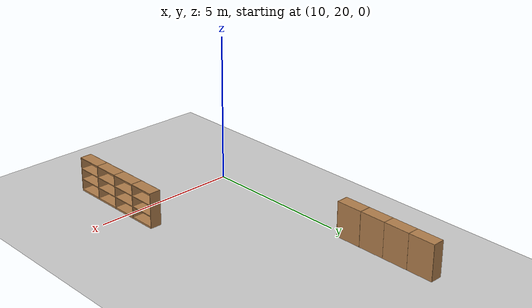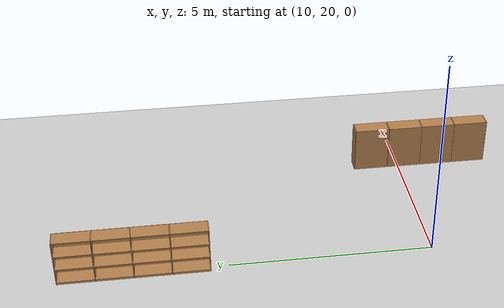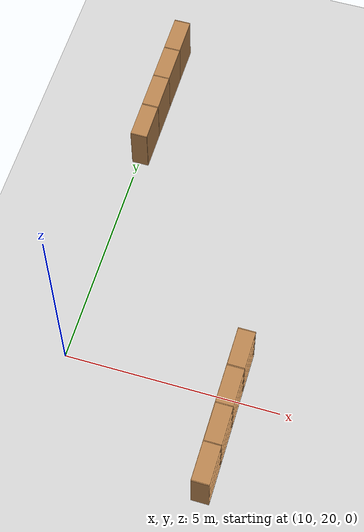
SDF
<sdf version="1.6">
 <world name="default">
  <model name="ground_plane">
   <static>1</static>
   <link name="link">
    <collision name="collision">
     <geometry><plane><normal>0 0 1</normal><size>100 100</size></plane></geometry>
     <surface><friction><ode><mu>100</mu><mu2>50</mu2></ode></friction></surface>
    </collision>
    <visual name="visual">
     <cast_shadows>0</cast_shadows>
     <geometry><plane><normal>0 0 1</normal><size>100 100</size></plane></geometry>
     <material>
      <script><uri>file://media/materials/scripts/gazebo.material</uri><name>Gazebo/Grey</name></script>
     </material>
    </visual>
   </link>
  </model>
  <model name="Bookself-4_clone_14_clone_0">
   <model name="Bookself-3">
    <model name="bookshelf_0">
     <static>1</static>
     <link name="link">
      <inertial><mass>1</mass></inertial>
      <collision name="back">
       <pose>0 0.005 0.6 0 -0 0</pose>
       <geometry><box><size>0.9 0.01 1.2</size></box></geometry>
      </collision>
      <visual name="visual1">
       <pose>0 0.005 0.6 0 -0 0</pose>
       <geometry><box><size>0.9 0.01 1.2</size></box></geometry>
       <material>
        <script><uri>file://media/materials/scripts/gazebo.material</uri><name>Gazebo/Wood</name></script>
       </material>
      </visual>
      <collision name="left_side">
       <pose>0.45 -0.195 0.6 0 -0 0</pose>
       <geometry><box><size>0.02 0.4 1.2</size></box></geometry>
      </collision>
      <visual name="visual2">
       <pose>0.45 -0.195 0.6 0 -0 0</pose>
       <geometry><box><size>0.02 0.4 1.2</size></box></geometry>
       <material>
        <script><uri>file://media/materials/scripts/gazebo.material</uri><name>Gazebo/Wood</name></script>
       </material>
      </visual>
      <collision name="right_side">
       <pose>-0.45 -0.195 0.6 0 -0 0</pose>
       <geometry><box><size>0.02 0.4 1.2</size></box></geometry>
      </collision>
      <visual name="visual3">
       <pose>-0.45 -0.195 0.6 0 -0 0</pose>
       <geometry><box><size>0.02 0.4 1.2</size></box></geometry>
       <material>
        <script><uri>file://media/materials/scripts/gazebo.material</uri><name>Gazebo/Wood</name></script>
       </material>
      </visual>
      <collision name="bottom">
       <pose>0 -0.195 0.03 0 -0 0</pose>
       <geometry><box><size>0.88 0.4 0.06</size></box></geometry>
      </collision>
      <visual name="visual4">
       <pose>0 -0.195 0.03 0 -0 0</pose>
       <geometry><box><size>0.88 0.4 0.06</size></box></geometry>
       <material>
        <script><uri>file://media/materials/scripts/gazebo.material</uri><name>Gazebo/Wood</name></script>
       </material>
      </visual>
      <collision name="top">
       <pose>0 -0.195 1.19 0 -0 0</pose>
       <geometry><box><size>0.88 0.4 0.02</size></box></geometry>
      </collision>
      <visual name="visual5">
       <pose>0 -0.195 1.19 0 -0 0</pose>
       <geometry><box><size>0.88 0.4 0.02</size></box></geometry>
       <material>
        <script><uri>file://media/materials/scripts/gazebo.material</uri><name>Gazebo/Wood</name></script>
       </material>
      </visual>
      <collision name="low_shelf">
       <pose>0 -0.195 0.43 0 -0 0</pose>
       <geometry><box><size>0.88 0.4 0.02</size></box></geometry>
      </collision>
      <visual name="visual6">
       <pose>0 -0.195 0.43 0 -0 0</pose>
       <geometry><box><size>0.88 0.4 0.02</size></box></geometry>
       <material>
        <script><uri>file://media/materials/scripts/gazebo.material</uri><name>Gazebo/Wood</name></script>
       </material>
      </visual>
      <collision name="high_shelf">
       <pose>0 -0.195 0.8 0 -0 0</pose>
       <geometry><box><size>0.88 0.4 0.02</size></box></geometry>
      </collision>
      <visual name="visual7">
       <pose>0 -0.195 0.8 0 -0 0</pose>
       <geometry><box><size>0.88 0.4 0.02</size></box></geometry>
       <material>
        <script><uri>file://media/materials/scripts/gazebo.material</uri><name>Gazebo/Wood</name></script>
       </material>
      </visual>
     </link>
     <pose>-0.903039 0 0 0 -0 0</pose>
    </model>
    <model name="bookshelf_1">
     <static>1</static>
     <link name="link">
      <inertial><mass>1</mass></inertial>
      <collision name="back">
       <pose>0 0.005 0.6 0 -0 0</pose>
       <geometry><box><size>0.9 0.01 1.2</size></box></geometry>
      </collision>
      <visual name="visual1">
       <pose>0 0.005 0.6 0 -0 0</pose>
       <geometry><box><size>0.9 0.01 1.2</size></box></geometry>
       <material>
        <script><uri>file://media/materials/scripts/gazebo.material</uri><name>Gazebo/Wood</name></script>
       </material>
      </visual>
      <collision name="left_side">
       <pose>0.45 -0.195 0.6 0 -0 0</pose>
       <geometry><box><size>0.02 0.4 1.2</size></box></geometry>
      </collision>
      <visual name="visual2">
       <pose>0.45 -0.195 0.6 0 -0 0</pose>
       <geometry><box><size>0.02 0.4 1.2</size></box></geometry>
       <material>
        <script><uri>file://media/materials/scripts/gazebo.material</uri><name>Gazebo/Wood</name></script>
       </material>
      </visual>
      <collision name="right_side">
       <pose>-0.45 -0.195 0.6 0 -0 0</pose>
       <geometry><box><size>0.02 0.4 1.2</size></box></geometry>
      </collision>
      <visual name="visual3">
       <pose>-0.45 -0.195 0.6 0 -0 0</pose>
       <geometry><box><size>0.02 0.4 1.2</size></box></geometry>
       <material>
        <script><uri>file://media/materials/scripts/gazebo.material</uri><name>Gazebo/Wood</name></script>
       </material>
      </visual>
      <collision name="bottom">
       <pose>0 -0.195 0.03 0 -0 0</pose>
       <geometry><box><size>0.88 0.4 0.06</size></box></geometry>
      </collision>
      <visual name="visual4">
       <pose>0 -0.195 0.03 0 -0 0</pose>
       <geometry><box><size>0.88 0.4 0.06</size></box></geometry>
       <material>
        <script><uri>file://media/materials/scripts/gazebo.material</uri><name>Gazebo/Wood</name></script>
       </material>
      </visual>
      <collision name="top">
       <pose>0 -0.195 1.19 0 -0 0</pose>
       <geometry><box><size>0.88 0.4 0.02</size></box></geometry>
      </collision>
      <visual name="visual5">
       <pose>0 -0.195 1.19 0 -0 0</pose>
       <geometry><box><size>0.88 0.4 0.02</size></box></geometry>
       <material>
        <script><uri>file://media/materials/scripts/gazebo.material</uri><name>Gazebo/Wood</name></script>
       </material>
      </visual>
      <collision name="low_shelf">
       <pose>0 -0.195 0.43 0 -0 0</pose>
       <geometry><box><size>0.88 0.4 0.02</size></box></geometry>
      </collision>
      <visual name="visual6">
       <pose>0 -0.195 0.43 0 -0 0</pose>
       <geometry><box><size>0.88 0.4 0.02</size></box></geometry>
       <material>
        <script><uri>file://media/materials/scripts/gazebo.material</uri><name>Gazebo/Wood</name></script>
       </material>
      </visual>
      <collision name="high_shelf">
       <pose>0 -0.195 0.8 0 -0 0</pose>
       <geometry><box><size>0.88 0.4 0.02</size></box></geometry>
      </collision>
      <visual name="visual7">
       <pose>0 -0.195 0.8 0 -0 0</pose>
       <geometry><box><size>0.88 0.4 0.02</size></box></geometry>
       <material>
        <script><uri>file://media/materials/scripts/gazebo.material</uri><name>Gazebo/Wood</name></script>
       </material>
      </visual>
     </link>
     <pose>0.000535 0 0 0 -0 0</pose>
    </model>
    <model name="bookshelf_1_clone">
     <static>1</static>
     <link name="link">
      <inertial><mass>1</mass></inertial>
      <collision name="back">
       <pose>0 0.005 0.6 0 -0 0</pose>
       <geometry><box><size>0.9 0.01 1.2</size></box></geometry>
      </collision>
      <visual name="visual1">
       <pose>0 0.005 0.6 0 -0 0</pose>
       <geometry><box><size>0.9 0.01 1.2</size></box></geometry>
       <material>
        <script><uri>file://media/materials/scripts/gazebo.material</uri><name>Gazebo/Wood</name></script>
       </material>
      </visual>
      <collision name="left_side">
       <pose>0.45 -0.195 0.6 0 -0 0</pose>
       <geometry><box><size>0.02 0.4 1.2</size></box></geometry>
      </collision>
      <visual name="visual2">
       <pose>0.45 -0.195 0.6 0 -0 0</pose>
       <geometry><box><size>0.02 0.4 1.2</size></box></geometry>
       <material>
        <script><uri>file://media/materials/scripts/gazebo.material</uri><name>Gazebo/Wood</name></script>
       </material>
      </visual>
      <collision name="right_side">
       <pose>-0.45 -0.195 0.6 0 -0 0</pose>
       <geometry><box><size>0.02 0.4 1.2</size></box></geometry>
      </collision>
      <visual name="visual3">
       <pose>-0.45 -0.195 0.6 0 -0 0</pose>
       <geometry><box><size>0.02 0.4 1.2</size></box></geometry>
       <material>
        <script><uri>file://media/materials/scripts/gazebo.material</uri><name>Gazebo/Wood</name></script>
       </material>
      </visual>
      <collision name="bottom">
       <pose>0 -0.195 0.03 0 -0 0</pose>
       <geometry><box><size>0.88 0.4 0.06</size></box></geometry>
      </collision>
      <visual name="visual4">
       <pose>0 -0.195 0.03 0 -0 0</pose>
       <geometry><box><size>0.88 0.4 0.06</size></box></geometry>
       <material>
        <script><uri>file://media/materials/scripts/gazebo.material</uri><name>Gazebo/Wood</name></script>
       </material>
      </visual>
      <collision name="top">
       <pose>0 -0.195 1.19 0 -0 0</pose>
       <geometry><box><size>0.88 0.4 0.02</size></box></geometry>
      </collision>
      <visual name="visual5">
       <pose>0 -0.195 1.19 0 -0 0</pose>
       <geometry><box><size>0.88 0.4 0.02</size></box></geometry>
       <material>
        <script><uri>file://media/materials/scripts/gazebo.material</uri><name>Gazebo/Wood</name></script>
       </material>
      </visual>
      <collision name="low_shelf">
       <pose>0 -0.195 0.43 0 -0 0</pose>
       <geometry><box><size>0.88 0.4 0.02</size></box></geometry>
      </collision>
      <visual name="visual6">
       <pose>0 -0.195 0.43 0 -0 0</pose>
       <geometry><box><size>0.88 0.4 0.02</size></box></geometry>
       <material>
        <script><uri>file://media/materials/scripts/gazebo.material</uri><name>Gazebo/Wood</name></script>
       </material>
      </visual>
      <collision name="high_shelf">
       <pose>0 -0.195 0.8 0 -0 0</pose>
       <geometry><box><size>0.88 0.4 0.02</size></box></geometry>
      </collision>
      <visual name="visual7">
       <pose>0 -0.195 0.8 0 -0 0</pose>
       <geometry><box><size>0.88 0.4 0.02</size></box></geometry>
       <material>
        <script><uri>file://media/materials/scripts/gazebo.material</uri><name>Gazebo/Wood</name></script>
       </material>
      </visual>
     </link>
     <pose>0.902502 0 0 0 -0 0</pose>
    </model>
    <static>1</static>
    <pose>-0.906894 3e-05 0 0 -0 0</pose>
   </model>
   <model name="bookshelf">
    <static>1</static>
    <link name="link">
     <inertial><mass>1</mass></inertial>
     <collision name="back">
      <pose>0 0.005 0.6 0 -0 0</pose>
      <geometry><box><size>0.9 0.01 1.2</size></box></geometry>
     </collision>
     <visual name="visual1">
      <pose>0 0.005 0.6 0 -0 0</pose>
      <geometry><box><size>0.9 0.01 1.2</size></box></geometry>
      <material>
       <script><uri>file://media/materials/scripts/gazebo.material</uri><name>Gazebo/Wood</name></script>
      </material>
     </visual>
     <collision name="left_side">
      <pose>0.45 -0.195 0.6 0 -0 0</pose>
      <geometry><box><size>0.02 0.4 1.2</size></box></geometry>
     </collision>
     <visual name="visual2">
      <pose>0.45 -0.195 0.6 0 -0 0</pose>
      <geometry><box><size>0.02 0.4 1.2</size></box></geometry>
      <material>
       <script><uri>file://media/materials/scripts/gazebo.material</uri><name>Gazebo/Wood</name></script>
      </material>
     </visual>
     <collision name="right_side">
      <pose>-0.45 -0.195 0.6 0 -0 0</pose>
      <geometry><box><size>0.02 0.4 1.2</size></box></geometry>
     </collision>
     <visual name="visual3">
      <pose>-0.45 -0.195 0.6 0 -0 0</pose>
      <geometry><box><size>0.02 0.4 1.2</size></box></geometry>
      <material>
       <script><uri>file://media/materials/scripts/gazebo.material</uri><name>Gazebo/Wood</name></script>
      </material>
     </visual>
     <collision name="bottom">
      <pose>0 -0.195 0.03 0 -0 0</pose>
      <geometry><box><size>0.88 0.4 0.06</size></box></geometry>
     </collision>
     <visual name="visual4">
      <pose>0 -0.195 0.03 0 -0 0</pose>
      <geometry><box><size>0.88 0.4 0.06</size></box></geometry>
      <material>
       <script><uri>file://media/materials/scripts/gazebo.material</uri><name>Gazebo/Wood</name></script>
      </material>
     </visual>
     <collision name="top">
      <pose>0 -0.195 1.19 0 -0 0</pose>
      <geometry><box><size>0.88 0.4 0.02</size></box></geometry>
     </collision>
     <visual name="visual5">
      <pose>0 -0.195 1.19 0 -0 0</pose>
      <geometry><box><size>0.88 0.4 0.02</size></box></geometry>
      <material>
       <script><uri>file://media/materials/scripts/gazebo.material</uri><name>Gazebo/Wood</name></script>
      </material>
     </visual>
     <collision name="low_shelf">
      <pose>0 -0.195 0.43 0 -0 0</pose>
      <geometry><box><size>0.88 0.4 0.02</size></box></geometry>
     </collision>
     <visual name="visual6">
      <pose>0 -0.195 0.43 0 -0 0</pose>
      <geometry><box><size>0.88 0.4 0.02</size></box></geometry>
      <material>
       <script><uri>file://media/materials/scripts/gazebo.material</uri><name>Gazebo/Wood</name></script>
      </material>
     </visual>
     <collision name="high_shelf">
      <pose>0 -0.195 0.8 0 -0 0</pose>
      <geometry><box><size>0.88 0.4 0.02</size></box></geometry>
     </collision>
     <visual name="visual7">
      <pose>0 -0.195 0.8 0 -0 0</pose>
      <geometry><box><size>0.88 0.4 0.02</size></box></geometry>
      <material>
       <script><uri>file://media/materials/scripts/gazebo.material</uri><name>Gazebo/Wood</name></script>
      </material>
     </visual>
    </link>
    <pose>0.906808 3e-05 0 0 -0 0</pose>
   </model>
   <static>0</static>
   <pose>13.68 19.8438 0 0 -0 1.5707</pose>
  </model>
  <model name="Bookself-4_clone_14_clone_3_clone_clone_0">
   <model name="Bookself-3">
    <model name="bookshelf_0">
     <static>1</static>
     <link name="link">
      <inertial><mass>1</mass></inertial>
      <collision name="back">
       <pose>0 0.005 0.6 0 -0 0</pose>
       <geometry><box><size>0.9 0.01 1.2</size></box></geometry>
      </collision>
      <visual name="visual1">
       <pose>0 0.005 0.6 0 -0 0</pose>
       <geometry><box><size>0.9 0.01 1.2</size></box></geometry>
       <material>
        <script><uri>file://media/materials/scripts/gazebo.material</uri><name>Gazebo/Wood</name></script>
       </material>
      </visual>
      <collision name="left_side">
       <pose>0.45 -0.195 0.6 0 -0 0</pose>
       <geometry><box><size>0.02 0.4 1.2</size></box></geometry>
      </collision>
      <visual name="visual2">
       <pose>0.45 -0.195 0.6 0 -0 0</pose>
       <geometry><box><size>0.02 0.4 1.2</size></box></geometry>
       <material>
        <script><uri>file://media/materials/scripts/gazebo.material</uri><name>Gazebo/Wood</name></script>
       </material>
      </visual>
      <collision name="right_side">
       <pose>-0.45 -0.195 0.6 0 -0 0</pose>
       <geometry><box><size>0.02 0.4 1.2</size></box></geometry>
      </collision>
      <visual name="visual3">
       <pose>-0.45 -0.195 0.6 0 -0 0</pose>
       <geometry><box><size>0.02 0.4 1.2</size></box></geometry>
       <material>
        <script><uri>file://media/materials/scripts/gazebo.material</uri><name>Gazebo/Wood</name></script>
       </material>
      </visual>
      <collision name="bottom">
       <pose>0 -0.195 0.03 0 -0 0</pose>
       <geometry><box><size>0.88 0.4 0.06</size></box></geometry>
      </collision>
      <visual name="visual4">
       <pose>0 -0.195 0.03 0 -0 0</pose>
       <geometry><box><size>0.88 0.4 0.06</size></box></geometry>
       <material>
        <script><uri>file://media/materials/scripts/gazebo.material</uri><name>Gazebo/Wood</name></script>
       </material>
      </visual>
      <collision name="top">
       <pose>0 -0.195 1.19 0 -0 0</pose>
       <geometry><box><size>0.88 0.4 0.02</size></box></geometry>
      </collision>
      <visual name="visual5">
       <pose>0 -0.195 1.19 0 -0 0</pose>
       <geometry><box><size>0.88 0.4 0.02</size></box></geometry>
       <material>
        <script><uri>file://media/materials/scripts/gazebo.material</uri><name>Gazebo/Wood</name></script>
       </material>
      </visual>
      <collision name="low_shelf">
       <pose>0 -0.195 0.43 0 -0 0</pose>
       <geometry><box><size>0.88 0.4 0.02</size></box></geometry>
      </collision>
      <visual name="visual6">
       <pose>0 -0.195 0.43 0 -0 0</pose>
       <geometry><box><size>0.88 0.4 0.02</size></box></geometry>
       <material>
        <script><uri>file://media/materials/scripts/gazebo.material</uri><name>Gazebo/Wood</name></script>
       </material>
      </visual>
      <collision name="high_shelf">
       <pose>0 -0.195 0.8 0 -0 0</pose>
       <geometry><box><size>0.88 0.4 0.02</size></box></geometry>
      </collision>
      <visual name="visual7">
       <pose>0 -0.195 0.8 0 -0 0</pose>
       <geometry><box><size>0.88 0.4 0.02</size></box></geometry>
       <material>
        <script><uri>file://media/materials/scripts/gazebo.material</uri><name>Gazebo/Wood</name></script>
       </material>
      </visual>
     </link>
     <pose>-0.903039 0 0 0 -0 0</pose>
    </model>
    <model name="bookshelf_1">
     <static>1</static>
     <link name="link">
      <inertial><mass>1</mass></inertial>
      <collision name="back">
       <pose>0 0.005 0.6 0 -0 0</pose>
       <geometry><box><size>0.9 0.01 1.2</size></box></geometry>
      </collision>
      <visual name="visual1">
       <pose>0 0.005 0.6 0 -0 0</pose>
       <geometry><box><size>0.9 0.01 1.2</size></box></geometry>
       <material>
        <script><uri>file://media/materials/scripts/gazebo.material</uri><name>Gazebo/Wood</name></script>
       </material>
      </visual>
      <collision name="left_side">
       <pose>0.45 -0.195 0.6 0 -0 0</pose>
       <geometry><box><size>0.02 0.4 1.2</size></box></geometry>
      </collision>
      <visual name="visual2">
       <pose>0.45 -0.195 0.6 0 -0 0</pose>
       <geometry><box><size>0.02 0.4 1.2</size></box></geometry>
       <material>
        <script><uri>file://media/materials/scripts/gazebo.material</uri><name>Gazebo/Wood</name></script>
       </material>
      </visual>
      <collision name="right_side">
       <pose>-0.45 -0.195 0.6 0 -0 0</pose>
       <geometry><box><size>0.02 0.4 1.2</size></box></geometry>
      </collision>
      <visual name="visual3">
       <pose>-0.45 -0.195 0.6 0 -0 0</pose>
       <geometry><box><size>0.02 0.4 1.2</size></box></geometry>
       <material>
        <script><uri>file://media/materials/scripts/gazebo.material</uri><name>Gazebo/Wood</name></script>
       </material>
      </visual>
      <collision name="bottom">
       <pose>0 -0.195 0.03 0 -0 0</pose>
       <geometry><box><size>0.88 0.4 0.06</size></box></geometry>
      </collision>
      <visual name="visual4">
       <pose>0 -0.195 0.03 0 -0 0</pose>
       <geometry><box><size>0.88 0.4 0.06</size></box></geometry>
       <material>
        <script><uri>file://media/materials/scripts/gazebo.material</uri><name>Gazebo/Wood</name></script>
       </material>
      </visual>
      <collision name="top">
       <pose>0 -0.195 1.19 0 -0 0</pose>
       <geometry><box><size>0.88 0.4 0.02</size></box></geometry>
      </collision>
      <visual name="visual5">
       <pose>0 -0.195 1.19 0 -0 0</pose>
       <geometry><box><size>0.88 0.4 0.02</size></box></geometry>
       <material>
        <script><uri>file://media/materials/scripts/gazebo.material</uri><name>Gazebo/Wood</name></script>
       </material>
      </visual>
      <collision name="low_shelf">
       <pose>0 -0.195 0.43 0 -0 0</pose>
       <geometry><box><size>0.88 0.4 0.02</size></box></geometry>
      </collision>
      <visual name="visual6">
       <pose>0 -0.195 0.43 0 -0 0</pose>
       <geometry><box><size>0.88 0.4 0.02</size></box></geometry>
       <material>
        <script><uri>file://media/materials/scripts/gazebo.material</uri><name>Gazebo/Wood</name></script>
       </material>
      </visual>
      <collision name="high_shelf">
       <pose>0 -0.195 0.8 0 -0 0</pose>
       <geometry><box><size>0.88 0.4 0.02</size></box></geometry>
      </collision>
      <visual name="visual7">
       <pose>0 -0.195 0.8 0 -0 0</pose>
       <geometry><box><size>0.88 0.4 0.02</size></box></geometry>
       <material>
        <script><uri>file://media/materials/scripts/gazebo.material</uri><name>Gazebo/Wood</name></script>
       </material>
      </visual>
     </link>
     <pose>0.000535 0 0 0 -0 0</pose>
    </model>
    <model name="bookshelf_1_clone">
     <static>1</static>
     <link name="link">
      <inertial><mass>1</mass></inertial>
      <collision name="back">
       <pose>0 0.005 0.6 0 -0 0</pose>
       <geometry><box><size>0.9 0.01 1.2</size></box></geometry>
      </collision>
      <visual name="visual1">
       <pose>0 0.005 0.6 0 -0 0</pose>
       <geometry><box><size>0.9 0.01 1.2</size></box></geometry>
       <material>
        <script><uri>file://media/materials/scripts/gazebo.material</uri><name>Gazebo/Wood</name></script>
       </material>
      </visual>
      <collision name="left_side">
       <pose>0.45 -0.195 0.6 0 -0 0</pose>
       <geometry><box><size>0.02 0.4 1.2</size></box></geometry>
      </collision>
      <visual name="visual2">
       <pose>0.45 -0.195 0.6 0 -0 0</pose>
       <geometry><box><size>0.02 0.4 1.2</size></box></geometry>
       <material>
        <script><uri>file://media/materials/scripts/gazebo.material</uri><name>Gazebo/Wood</name></script>
       </material>
      </visual>
      <collision name="right_side">
       <pose>-0.45 -0.195 0.6 0 -0 0</pose>
       <geometry><box><size>0.02 0.4 1.2</size></box></geometry>
      </collision>
      <visual name="visual3">
       <pose>-0.45 -0.195 0.6 0 -0 0</pose>
       <geometry><box><size>0.02 0.4 1.2</size></box></geometry>
       <material>
        <script><uri>file://media/materials/scripts/gazebo.material</uri><name>Gazebo/Wood</name></script>
       </material>
      </visual>
      <collision name="bottom">
       <pose>0 -0.195 0.03 0 -0 0</pose>
       <geometry><box><size>0.88 0.4 0.06</size></box></geometry>
      </collision>
      <visual name="visual4">
       <pose>0 -0.195 0.03 0 -0 0</pose>
       <geometry><box><size>0.88 0.4 0.06</size></box></geometry>
       <material>
        <script><uri>file://media/materials/scripts/gazebo.material</uri><name>Gazebo/Wood</name></script>
       </material>
      </visual>
      <collision name="top">
       <pose>0 -0.195 1.19 0 -0 0</pose>
       <geometry><box><size>0.88 0.4 0.02</size></box></geometry>
      </collision>
      <visual name="visual5">
       <pose>0 -0.195 1.19 0 -0 0</pose>
       <geometry><box><size>0.88 0.4 0.02</size></box></geometry>
       <material>
        <script><uri>file://media/materials/scripts/gazebo.material</uri><name>Gazebo/Wood</name></script>
       </material>
      </visual>
      <collision name="low_shelf">
       <pose>0 -0.195 0.43 0 -0 0</pose>
       <geometry><box><size>0.88 0.4 0.02</size></box></geometry>
      </collision>
      <visual name="visual6">
       <pose>0 -0.195 0.43 0 -0 0</pose>
       <geometry><box><size>0.88 0.4 0.02</size></box></geometry>
       <material>
        <script><uri>file://media/materials/scripts/gazebo.material</uri><name>Gazebo/Wood</name></script>
       </material>
      </visual>
      <collision name="high_shelf">
       <pose>0 -0.195 0.8 0 -0 0</pose>
       <geometry><box><size>0.88 0.4 0.02</size></box></geometry>
      </collision>
      <visual name="visual7">
       <pose>0 -0.195 0.8 0 -0 0</pose>
       <geometry><box><size>0.88 0.4 0.02</size></box></geometry>
       <material>
        <script><uri>file://media/materials/scripts/gazebo.material</uri><name>Gazebo/Wood</name></script>
       </material>
      </visual>
     </link>
     <pose>0.902502 0 0 0 -0 0</pose>
    </model>
    <static>1</static>
    <pose>-0.906894 3e-05 0 0 -0 0</pose>
   </model>
   <model name="bookshelf">
    <static>1</static>
    <link name="link">
     <inertial><mass>1</mass></inertial>
     <collision name="back">
      <pose>0 0.005 0.6 0 -0 0</pose>
      <geometry><box><size>0.9 0.01 1.2</size></box></geometry>
     </collision>
     <visual name="visual1">
      <pose>0 0.005 0.6 0 -0 0</pose>
      <geometry><box><size>0.9 0.01 1.2</size></box></geometry>
      <material>
       <script><uri>file://media/materials/scripts/gazebo.material</uri><name>Gazebo/Wood</name></script>
      </material>
     </visual>
     <collision name="left_side">
      <pose>0.45 -0.195 0.6 0 -0 0</pose>
      <geometry><box><size>0.02 0.4 1.2</size></box></geometry>
     </collision>
     <visual name="visual2">
      <pose>0.45 -0.195 0.6 0 -0 0</pose>
      <geometry><box><size>0.02 0.4 1.2</size></box></geometry>
      <material>
       <script><uri>file://media/materials/scripts/gazebo.material</uri><name>Gazebo/Wood</name></script>
      </material>
     </visual>
     <collision name="right_side">
      <pose>-0.45 -0.195 0.6 0 -0 0</pose>
      <geometry><box><size>0.02 0.4 1.2</size></box></geometry>
     </collision>
     <visual name="visual3">
      <pose>-0.45 -0.195 0.6 0 -0 0</pose>
      <geometry><box><size>0.02 0.4 1.2</size></box></geometry>
      <material>
       <script><uri>file://media/materials/scripts/gazebo.material</uri><name>Gazebo/Wood</name></script>
      </material>
     </visual>
     <collision name="bottom">
      <pose>0 -0.195 0.03 0 -0 0</pose>
      <geometry><box><size>0.88 0.4 0.06</size></box></geometry>
     </collision>
     <visual name="visual4">
      <pose>0 -0.195 0.03 0 -0 0</pose>
      <geometry><box><size>0.88 0.4 0.06</size></box></geometry>
      <material>
       <script><uri>file://media/materials/scripts/gazebo.material</uri><name>Gazebo/Wood</name></script>
      </material>
     </visual>
     <collision name="top">
      <pose>0 -0.195 1.19 0 -0 0</pose>
      <geometry><box><size>0.88 0.4 0.02</size></box></geometry>
     </collision>
     <visual name="visual5">
      <pose>0 -0.195 1.19 0 -0 0</pose>
      <geometry><box><size>0.88 0.4 0.02</size></box></geometry>
      <material>
       <script><uri>file://media/materials/scripts/gazebo.material</uri><name>Gazebo/Wood</name></script>
      </material>
     </visual>
     <collision name="low_shelf">
      <pose>0 -0.195 0.43 0 -0 0</pose>
      <geometry><box><size>0.88 0.4 0.02</size></box></geometry>
     </collision>
     <visual name="visual6">
      <pose>0 -0.195 0.43 0 -0 0</pose>
      <geometry><box><size>0.88 0.4 0.02</size></box></geometry>
      <material>
       <script><uri>file://media/materials/scripts/gazebo.material</uri><name>Gazebo/Wood</name></script>
      </material>
     </visual>
     <collision name="high_shelf">
      <pose>0 -0.195 0.8 0 -0 0</pose>
      <geometry><box><size>0.88 0.4 0.02</size></box></geometry>
     </collision>
     <visual name="visual7">
      <pose>0 -0.195 0.8 0 -0 0</pose>
      <geometry><box><size>0.88 0.4 0.02</size></box></geometry>
      <material>
       <script><uri>file://media/materials/scripts/gazebo.material</uri><name>Gazebo/Wood</name></script>
      </material>
     </visual>
    </link>
    <pose>0.906808 3e-05 0 0 -0 0</pose>
   </model>
   <static>0</static>
   <pose>10.2349 26.8 0 0 0 -1.5707</pose>
  </model>
 </world>
</sdf>
